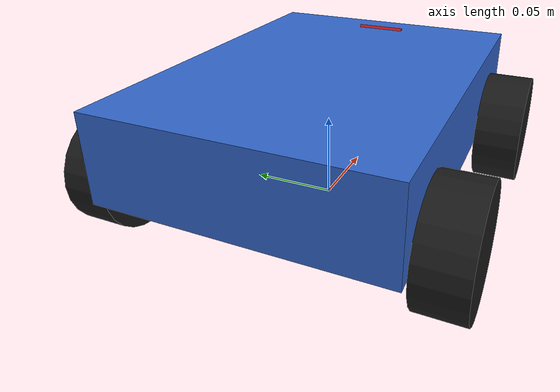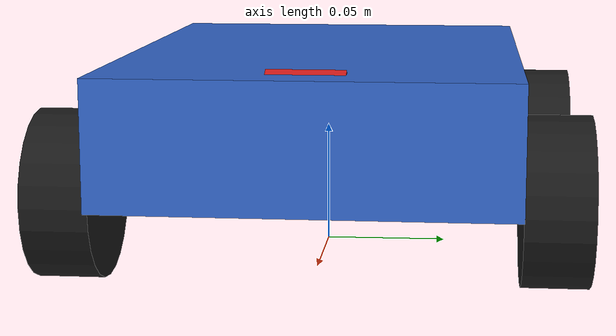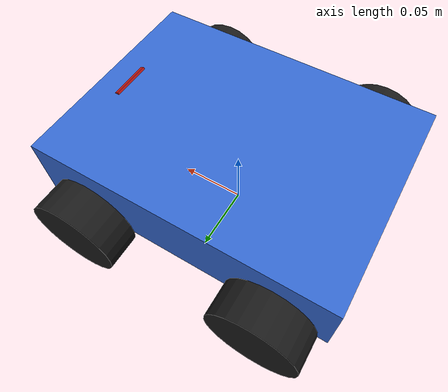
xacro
<?xml version="1.0"?>
<robot name="line_follower_robot" xmlns:xacro="http://www.ros.org/wiki/xacro">

  <!-- ══════════════════════ PROPERTIES ════════════════════════════════════ -->
  <xacro:property name="chassis_length" value="0.22"/>
  <xacro:property name="chassis_width"  value="0.16"/>
  <xacro:property name="chassis_height" value="0.05"/>
  <xacro:property name="chassis_mass"   value="1.0"/>

  <xacro:property name="wheel_radius"   value="0.033"/>
  <xacro:property name="wheel_width"    value="0.026"/>
  <xacro:property name="wheel_mass"     value="0.1"/>
  <xacro:property name="wheel_sep"      value="0.186"/>

  <xacro:property name="front_axle_x"  value="0.07"/>
  <xacro:property name="rear_axle_x"   value="-0.07"/>
  <xacro:property name="base_z"         value="${wheel_radius}"/>

  <!-- ══════════════════════ MATERIALS ═════════════════════════════════════ -->
  <material name="black"><color rgba="0.1 0.1 0.1 1.0"/></material>
  <material name="blue" ><color rgba="0.2 0.4 0.8 1.0"/></material>
  <material name="red"  ><color rgba="0.8 0.1 0.1 1.0"/></material>

  <!-- ══════════════════════ INERTIA MACROS ════════════════════════════════ -->
  <xacro:macro name="box_inertia" params="m l w h">
    <inertial>
      <mass value="${m}"/>
      <inertia ixx="${m*(w*w+h*h)/12}" ixy="0" ixz="0"
               iyy="${m*(l*l+h*h)/12}" iyz="0"
               izz="${m*(l*l+w*w)/12}"/>
    </inertial>
  </xacro:macro>

  <xacro:macro name="cylinder_inertia" params="m r h">
    <inertial>
      <mass value="${m}"/>
      <inertia ixx="${m*(3*r*r+h*h)/12}" ixy="0" ixz="0"
               iyy="${m*(3*r*r+h*h)/12}" iyz="0"
               izz="${m*r*r/2}"/>
    </inertial>
  </xacro:macro>

  <!-- ══════════════════════ BASE LINK ═════════════════════════════════════ -->
  <link name="base_link"/>

  <!-- ══════════════════════ CHASSIS ═══════════════════════════════════════ -->
  <link name="chassis">
    <visual>
      <origin xyz="0 0 0" rpy="0 0 0"/>
      <geometry><box size="${chassis_length} ${chassis_width} ${chassis_height}"/></geometry>
      <material name="blue"/>
    </visual>
    <collision>
      <origin xyz="0 0 0" rpy="0 0 0"/>
      <geometry><box size="${chassis_length} ${chassis_width} ${chassis_height}"/></geometry>
    </collision>
    <xacro:box_inertia m="${chassis_mass}" l="${chassis_length}" w="${chassis_width}" h="${chassis_height}"/>
  </link>

  <joint name="base_to_chassis" type="fixed">
    <parent link="base_link"/>
    <child  link="chassis"/>
    <origin xyz="0 0 ${base_z + chassis_height/2}" rpy="0 0 0"/>
  </joint>

  <!-- ══════════════════════ WHEEL MACRO ═══════════════════════════════════ -->
  <xacro:macro name="wheel" params="name reflect x_off">
    <link name="${name}_wheel">
      <visual>
        <origin xyz="0 0 0" rpy="${pi/2} 0 0"/>
        <geometry><cylinder radius="${wheel_radius}" length="${wheel_width}"/></geometry>
        <material name="black"/>
      </visual>
      <collision>
        <origin xyz="0 0 0" rpy="${pi/2} 0 0"/>
        <geometry><cylinder radius="${wheel_radius}" length="${wheel_width}"/></geometry>
      </collision>
      <xacro:cylinder_inertia m="${wheel_mass}" r="${wheel_radius}" h="${wheel_width}"/>
    </link>

    <joint name="${name}_wheel_joint" type="continuous">
      <parent link="chassis"/>
      <child  link="${name}_wheel"/>
      <origin xyz="${x_off} ${reflect * wheel_sep/2} ${-chassis_height/2}" rpy="0 0 0"/>
      <axis xyz="0 1 0"/>
    </joint>
  </xacro:macro>

  <!-- Front wheels (passive — spin freely) -->
  <xacro:wheel name="front_left"  reflect=" 1" x_off="${front_axle_x}"/>
  <xacro:wheel name="front_right" reflect="-1" x_off="${front_axle_x}"/>

  <!-- Rear wheels (driven by DiffDrive) -->
  <xacro:wheel name="rear_left"   reflect=" 1" x_off="${rear_axle_x}"/>
  <xacro:wheel name="rear_right"  reflect="-1" x_off="${rear_axle_x}"/>

  <!-- ══════════════════════ CAMERA ════════════════════════════════════════ -->
  <link name="camera_link">
    <visual>
      <geometry><box size="0.020 0.030 0.012"/></geometry>
      <material name="red"/>
    </visual>
    <collision>
      <geometry><box size="0.020 0.030 0.012"/></geometry>
    </collision>
    <inertial>
      <mass value="0.02"/>
      <inertia ixx="1e-6" ixy="0" ixz="0" iyy="1e-6" iyz="0" izz="1e-6"/>
    </inertial>
  </link>

  <joint name="camera_joint" type="fixed">
    <parent link="chassis"/>
    <child  link="camera_link"/>
    <!-- place camera near front of chassis, slightly above the chassis
         midline so the lens is ~7cm above the ground for good perspective -->
    <origin xyz="${chassis_length/2 - 0.02} 0 ${chassis_height/2 - 0.01}" rpy="0 -1.0472 0"/>
  </joint>

  <!-- ══════════════════════ GAZEBO PLUGINS ════════════════════════════════ -->

  <!-- DiffDrive: rear wheels only -->
  <gazebo>
    <plugin filename="gz-sim-diff-drive-system"
            name="gz::sim::systems::DiffDrive">
      <left_joint>rear_left_wheel_joint</left_joint>
      <right_joint>rear_right_wheel_joint</right_joint>
      <wheel_separation>${wheel_sep}</wheel_separation>
      <wheel_radius>${wheel_radius}</wheel_radius>
      <odom_publish_frequency>30</odom_publish_frequency>
      <topic>cmd_vel</topic>
      <odom_topic>odom</odom_topic>
      <tf_topic>tf</tf_topic>
      <frame_id>odom</frame_id>
      <child_frame_id>base_link</child_frame_id>
    </plugin>
  </gazebo>

  <!-- Joint states for all 4 wheels -->
  <gazebo>
    <plugin filename="gz-sim-joint-state-publisher-system"
            name="gz::sim::systems::JointStatePublisher">
      <joint_name>front_left_wheel_joint</joint_name>
      <joint_name>front_right_wheel_joint</joint_name>
      <joint_name>rear_left_wheel_joint</joint_name>
      <joint_name>rear_right_wheel_joint</joint_name>
      <topic>joint_states</topic>
      <update_rate>30</update_rate>
    </plugin>
  </gazebo>

  <!-- Downward camera -->
  <gazebo reference="camera_link">
    <sensor name="line_camera" type="camera">
          <!-- sensor pose relative to camera_link: keep centered on the link
            and rely on the joint rotation/offset above for aiming -->
          <pose>0 0 0 0 0 0</pose>
      <always_on>1</always_on>
      <update_rate>15</update_rate>
      <camera name="line_camera">
        <horizontal_fov>1.047</horizontal_fov>
        <image>
          <width>160</width>
          <height>120</height>
          <format>RGB_INT8</format>
        </image>
        <clip><near>0.02</near><far>2.0</far></clip>
        <noise><type>gaussian</type><mean>0.0</mean><stddev>0.005</stddev></noise>
      </camera>
      <topic>/line_camera/image</topic>
      <gz_frame_id>camera_link</gz_frame_id>
    </sensor>
  </gazebo>

  <!-- Friction -->
  <gazebo reference="rear_left_wheel"><mu1>1.0</mu1><mu2>1.0</mu2></gazebo>
  <gazebo reference="rear_right_wheel"><mu1>1.0</mu1><mu2>1.0</mu2></gazebo>
  <gazebo reference="front_left_wheel"><mu1>0.8</mu1><mu2>0.8</mu2></gazebo>
  <gazebo reference="front_right_wheel"><mu1>0.8</mu1><mu2>0.8</mu2></gazebo>

</robot>
